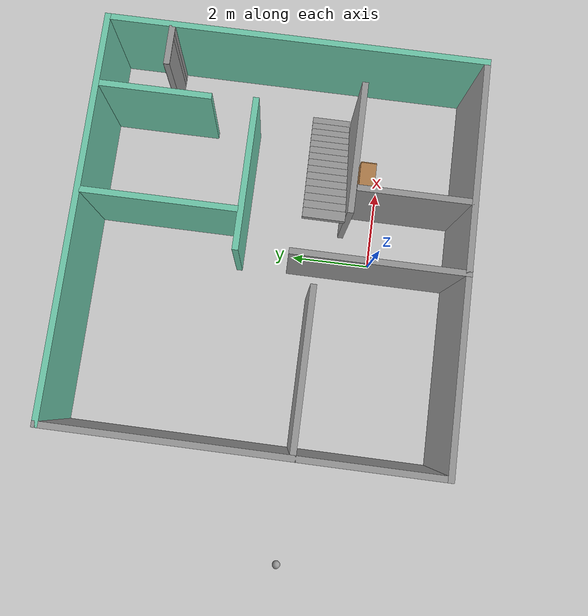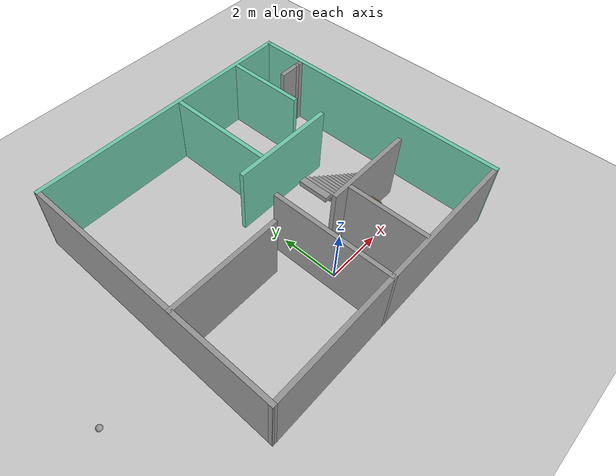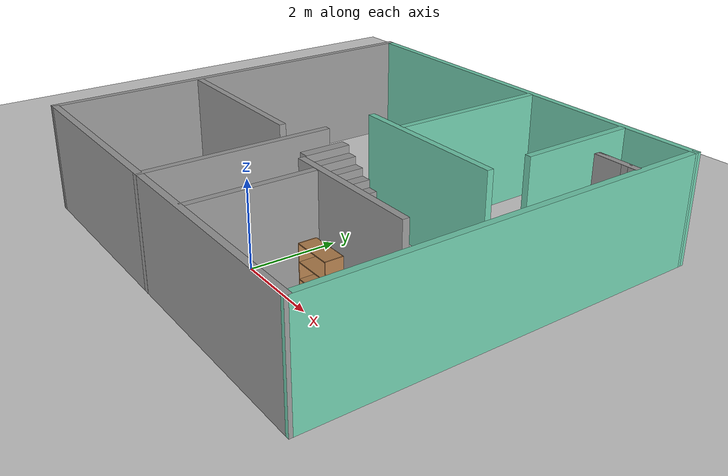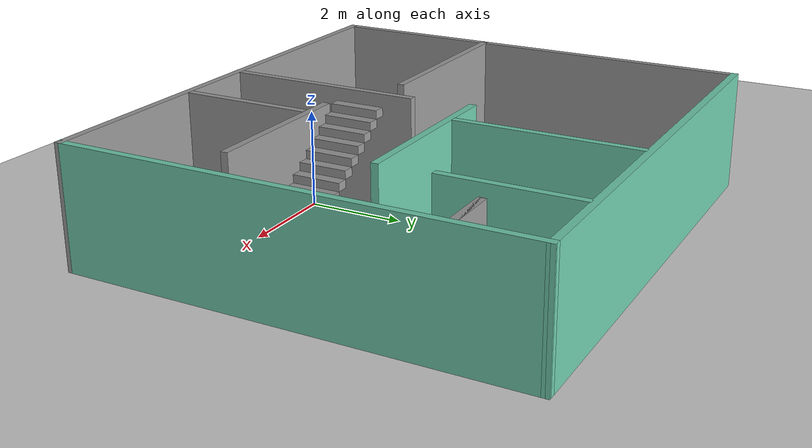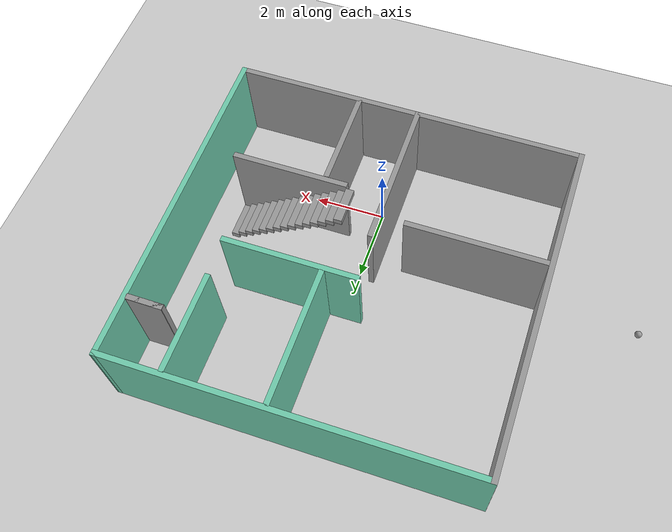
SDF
<sdf version="1.7">
 <world name="default">
  <light name="sun" type="directional">
   <pose>0 0 10 0 -0 0</pose>
   <diffuse>0.8 0.8 0.8 1</diffuse>
   <specular>0.2 0.2 0.2 1</specular>
   <attenuation>
    <range>1000</range>
    <constant>0.9</constant>
    <linear>0.01</linear>
    <quadratic>0.001</quadratic>
   </attenuation>
   <direction>-0.5 0.1 -0.9</direction>
   <spot><inner_angle>0</inner_angle><outer_angle>0</outer_angle><falloff>0</falloff></spot>
  </light>
  <model name="ground_plane">
   <static>1</static>
   <link name="link">
    <collision name="collision">
     <geometry><plane><normal>0 0 1</normal><size>100 100</size></plane></geometry>
     <surface>
      <contact><collide_bitmask>65535</collide_bitmask></contact>
      <friction><ode><mu>100</mu><mu2>50</mu2></ode></friction>
     </surface>
    </collision>
    <visual name="visual">
     <cast_shadows>0</cast_shadows>
     <geometry><plane><normal>0 0 1</normal><size>100 100</size></plane></geometry>
     <material>
      <script><uri>file://media/materials/scripts/gazebo.material</uri><name>Gazebo/Grey</name></script>
     </material>
    </visual>
   </link>
  </model>
  <gravity>0 0 -9.8</gravity>
  <magnetic_field>6e-06 2.3e-05 -4.2e-05</magnetic_field>
  <atmosphere type="adiabatic"/>
  <physics type="ode">
   <max_step_size>0.001</max_step_size>
   <real_time_factor>1</real_time_factor>
   <real_time_update_rate>1000</real_time_update_rate>
  </physics>
  <scene><ambient>0.4 0.4 0.4 1</ambient><background>0.7 0.7 0.7 1</background><shadows>1</shadows></scene>
  <spherical_coordinates>
   <surface_model>EARTH_WGS84</surface_model>
   <latitude_deg>0</latitude_deg>
   <longitude_deg>0</longitude_deg>
   <elevation>0</elevation>
   <heading_deg>0</heading_deg>
  </spherical_coordinates>
  <model name="my_house">
   <pose>-0.073859 2.59663 0 0 -0 0</pose>
   <link name="Stairs_0">
    <visual name="Stairs_0_Visual_0">
     <pose>3.89631 -1.16417 0.083333 0 -0 -1.5708</pose>
     <geometry><box><size>1 0.231 0.166667</size></box></geometry>
     <material>
      <script><uri>file://media/materials/scripts/gazebo.material</uri><name>Gazebo/Grey</name></script>
      <ambient>1 1 1 1</ambient>
     </material>
     <meta><layer>0</layer></meta>
    </visual>
    <collision name="Stairs_0_Collision_0">
     <geometry><box><size>1 0.231 0.166667</size></box></geometry>
     <pose>3.89631 -1.16417 0.083333 0 -0 -1.5708</pose>
    </collision>
    <visual name="Stairs_0_Visual_1">
     <pose>3.66531 -1.16417 0.25 0 -0 -1.5708</pose>
     <geometry><box><size>1 0.231 0.166667</size></box></geometry>
     <material>
      <script><uri>file://media/materials/scripts/gazebo.material</uri><name>Gazebo/Grey</name></script>
      <ambient>1 1 1 1</ambient>
     </material>
     <meta><layer>0</layer></meta>
    </visual>
    <collision name="Stairs_0_Collision_1">
     <geometry><box><size>1 0.231 0.166667</size></box></geometry>
     <pose>3.66531 -1.16417 0.25 0 -0 -1.5708</pose>
    </collision>
    <visual name="Stairs_0_Visual_2">
     <pose>3.43431 -1.16417 0.416667 0 -0 -1.5708</pose>
     <geometry><box><size>1 0.231 0.166667</size></box></geometry>
     <material>
      <script><uri>file://media/materials/scripts/gazebo.material</uri><name>Gazebo/Grey</name></script>
      <ambient>1 1 1 1</ambient>
     </material>
     <meta><layer>0</layer></meta>
    </visual>
    <collision name="Stairs_0_Collision_2">
     <geometry><box><size>1 0.231 0.166667</size></box></geometry>
     <pose>3.43431 -1.16417 0.416667 0 -0 -1.5708</pose>
    </collision>
    <visual name="Stairs_0_Visual_3">
     <pose>3.20331 -1.16417 0.583333 0 -0 -1.5708</pose>
     <geometry><box><size>1 0.231 0.166667</size></box></geometry>
     <material>
      <script><uri>file://media/materials/scripts/gazebo.material</uri><name>Gazebo/Grey</name></script>
      <ambient>1 1 1 1</ambient>
     </material>
     <meta><layer>0</layer></meta>
    </visual>
    <collision name="Stairs_0_Collision_3">
     <geometry><box><size>1 0.231 0.166667</size></box></geometry>
     <pose>3.20331 -1.16417 0.583333 0 -0 -1.5708</pose>
    </collision>
    <visual name="Stairs_0_Visual_4">
     <pose>2.97231 -1.16417 0.75 0 -0 -1.5708</pose>
     <geometry><box><size>1 0.231 0.166667</size></box></geometry>
     <material>
      <script><uri>file://media/materials/scripts/gazebo.material</uri><name>Gazebo/Grey</name></script>
      <ambient>1 1 1 1</ambient>
     </material>
     <meta><layer>0</layer></meta>
    </visual>
    <collision name="Stairs_0_Collision_4">
     <geometry><box><size>1 0.231 0.166667</size></box></geometry>
     <pose>2.97231 -1.16417 0.75 0 -0 -1.5708</pose>
    </collision>
    <visual name="Stairs_0_Visual_5">
     <pose>2.74131 -1.16417 0.916667 0 -0 -1.5708</pose>
     <geometry><box><size>1 0.231 0.166667</size></box></geometry>
     <material>
      <script><uri>file://media/materials/scripts/gazebo.material</uri><name>Gazebo/Grey</name></script>
      <ambient>1 1 1 1</ambient>
     </material>
     <meta><layer>0</layer></meta>
    </visual>
    <collision name="Stairs_0_Collision_5">
     <geometry><box><size>1 0.231 0.166667</size></box></geometry>
     <pose>2.74131 -1.16417 0.916667 0 -0 -1.5708</pose>
    </collision>
    <visual name="Stairs_0_Visual_6">
     <pose>2.51031 -1.16417 1.08333 0 -0 -1.5708</pose>
     <geometry><box><size>1 0.231 0.166667</size></box></geometry>
     <material>
      <script><uri>file://media/materials/scripts/gazebo.material</uri><name>Gazebo/Grey</name></script>
      <ambient>1 1 1 1</ambient>
     </material>
     <meta><layer>0</layer></meta>
    </visual>
    <collision name="Stairs_0_Collision_6">
     <geometry><box><size>1 0.231 0.166667</size></box></geometry>
     <pose>2.51031 -1.16417 1.08333 0 -0 -1.5708</pose>
    </collision>
    <visual name="Stairs_0_Visual_7">
     <pose>2.27931 -1.16417 1.25 0 -0 -1.5708</pose>
     <geometry><box><size>1 0.231 0.166667</size></box></geometry>
     <material>
      <script><uri>file://media/materials/scripts/gazebo.material</uri><name>Gazebo/Grey</name></script>
      <ambient>1 1 1 1</ambient>
     </material>
     <meta><layer>0</layer></meta>
    </visual>
    <collision name="Stairs_0_Collision_7">
     <geometry><box><size>1 0.231 0.166667</size></box></geometry>
     <pose>2.27931 -1.16417 1.25 0 -0 -1.5708</pose>
    </collision>
    <visual name="Stairs_0_Visual_8">
     <pose>2.04831 -1.16417 1.41667 0 -0 -1.5708</pose>
     <geometry><box><size>1 0.231 0.166667</size></box></geometry>
     <material>
      <script><uri>file://media/materials/scripts/gazebo.material</uri><name>Gazebo/Grey</name></script>
      <ambient>1 1 1 1</ambient>
     </material>
     <meta><layer>0</layer></meta>
    </visual>
    <collision name="Stairs_0_Collision_8">
     <geometry><box><size>1 0.231 0.166667</size></box></geometry>
     <pose>2.04831 -1.16417 1.41667 0 -0 -1.5708</pose>
    </collision>
    <visual name="Stairs_0_Visual_9">
     <pose>1.81731 -1.16417 1.58333 0 -0 -1.5708</pose>
     <geometry><box><size>1 0.231 0.166667</size></box></geometry>
     <material>
      <script><uri>file://media/materials/scripts/gazebo.material</uri><name>Gazebo/Grey</name></script>
      <ambient>1 1 1 1</ambient>
     </material>
     <meta><layer>0</layer></meta>
    </visual>
    <collision name="Stairs_0_Collision_9">
     <geometry><box><size>1 0.231 0.166667</size></box></geometry>
     <pose>1.81731 -1.16417 1.58333 0 -0 -1.5708</pose>
    </collision>
    <visual name="Stairs_0_Visual_10">
     <pose>1.58631 -1.16417 1.75 0 -0 -1.5708</pose>
     <geometry><box><size>1 0.231 0.166667</size></box></geometry>
     <material>
      <script><uri>file://media/materials/scripts/gazebo.material</uri><name>Gazebo/Grey</name></script>
      <ambient>1 1 1 1</ambient>
     </material>
     <meta><layer>0</layer></meta>
    </visual>
    <collision name="Stairs_0_Collision_10">
     <geometry><box><size>1 0.231 0.166667</size></box></geometry>
     <pose>1.58631 -1.16417 1.75 0 -0 -1.5708</pose>
    </collision>
    <visual name="Stairs_0_Visual_11">
     <pose>1.35531 -1.16417 1.91667 0 -0 -1.5708</pose>
     <geometry><box><size>1 0.231 0.166667</size></box></geometry>
     <material>
      <script><uri>file://media/materials/scripts/gazebo.material</uri><name>Gazebo/Grey</name></script>
      <ambient>1 1 1 1</ambient>
     </material>
     <meta><layer>0</layer></meta>
    </visual>
    <collision name="Stairs_0_Collision_11">
     <geometry><box><size>1 0.231 0.166667</size></box></geometry>
     <pose>1.35531 -1.16417 1.91667 0 -0 -1.5708</pose>
    </collision>
    <visual name="Stairs_0_Visual_12">
     <pose>1.12431 -1.16417 2.08333 0 -0 -1.5708</pose>
     <geometry><box><size>1 0.231 0.166667</size></box></geometry>
     <material>
      <script><uri>file://media/materials/scripts/gazebo.material</uri><name>Gazebo/Grey</name></script>
      <ambient>1 1 1 1</ambient>
     </material>
     <meta><layer>0</layer></meta>
    </visual>
    <collision name="Stairs_0_Collision_12">
     <geometry><box><size>1 0.231 0.166667</size></box></geometry>
     <pose>1.12431 -1.16417 2.08333 0 -0 -1.5708</pose>
    </collision>
    <visual name="Stairs_0_Visual_13">
     <pose>0.89331 -1.16417 2.25 0 -0 -1.5708</pose>
     <geometry><box><size>1 0.231 0.166667</size></box></geometry>
     <material>
      <script><uri>file://media/materials/scripts/gazebo.material</uri><name>Gazebo/Grey</name></script>
      <ambient>1 1 1 1</ambient>
     </material>
     <meta><layer>0</layer></meta>
    </visual>
    <collision name="Stairs_0_Collision_13">
     <geometry><box><size>1 0.231 0.166667</size></box></geometry>
     <pose>0.89331 -1.16417 2.25 0 -0 -1.5708</pose>
    </collision>
    <visual name="Stairs_0_Visual_14">
     <pose>0.66231 -1.16417 2.41667 0 -0 -1.5708</pose>
     <geometry><box><size>1 0.231 0.166667</size></box></geometry>
     <material>
      <script><uri>file://media/materials/scripts/gazebo.material</uri><name>Gazebo/Grey</name></script>
      <ambient>1 1 1 1</ambient>
     </material>
     <meta><layer>0</layer></meta>
    </visual>
    <collision name="Stairs_0_Collision_14">
     <geometry><box><size>1 0.231 0.166667</size></box></geometry>
     <pose>0.66231 -1.16417 2.41667 0 -0 -1.5708</pose>
    </collision>
   </link>
   <link name="Wall_0">
    <collision name="Wall_0_Collision">
     <geometry><box><size>10 0.15 2.5</size></box></geometry>
     <pose>0 0 1.25 0 -0 0</pose>
    </collision>
    <visual name="Wall_0_Visual">
     <pose>0 0 1.25 0 -0 0</pose>
     <geometry><box><size>10 0.15 2.5</size></box></geometry>
     <material>
      <script><uri>file://media/materials/scripts/gazebo.material</uri><name>Gazebo/Grey</name></script>
      <ambient>1 1 1 1</ambient>
     </material>
     <meta><layer>0</layer></meta>
    </visual>
    <pose>-0.001141 -4.63663 0 0 -0 0</pose>
   </link>
   <link name="Wall_1">
    <collision name="Wall_1_Collision">
     <geometry><box><size>9.42511 0.15 2.5</size></box></geometry>
     <pose>0 0 1.25 0 -0 0</pose>
    </collision>
    <visual name="Wall_1_Visual">
     <pose>0 0 1.25 0 -0 0</pose>
     <geometry><box><size>9.42511 0.15 2.5</size></box></geometry>
     <material>
      <script><uri>file://media/materials/scripts/gazebo.material</uri><name>Gazebo/Grey</name></script>
      <ambient>0.435294 0.796078 0.67451 1</ambient>
     </material>
     <meta><layer>0</layer></meta>
    </visual>
    <pose>4.925 0.000921 0 0 -0 1.57055</pose>
   </link>
   <link name="Wall_11">
    <collision name="Wall_11_Collision">
     <geometry><box><size>4.25 0.15 2.5</size></box></geometry>
     <pose>0 0 1.25 0 -0 0</pose>
    </collision>
    <visual name="Wall_11_Visual">
     <pose>0 0 1.25 0 -0 0</pose>
     <geometry><box><size>4.25 0.15 2.5</size></box></geometry>
     <material>
      <script><uri>file://media/materials/scripts/gazebo.material</uri><name>Gazebo/Grey</name></script>
      <ambient>1 1 1 1</ambient>
     </material>
     <meta><layer>0</layer></meta>
    </visual>
    <pose>-0.293634 -2.58849 0 0 -0 1.5708</pose>
   </link>
   <link name="Wall_13">
    <collision name="Wall_13_Collision">
     <geometry><box><size>3.75 0.15 2.5</size></box></geometry>
     <pose>0 0 1.25 0 -0 0</pose>
    </collision>
    <visual name="Wall_13_Visual">
     <pose>0 0 1.25 0 -0 0</pose>
     <geometry><box><size>3.75 0.15 2.5</size></box></geometry>
     <material>
      <script><uri>file://media/materials/scripts/gazebo.material</uri><name>Gazebo/Grey</name></script>
      <ambient>0.435294 0.796078 0.67451 1</ambient>
     </material>
     <meta><layer>0</layer></meta>
    </visual>
    <pose>1.43639 0.772014 0 0 -0 0</pose>
   </link>
   <link name="Wall_15">
    <collision name="Wall_15_Collision">
     <geometry><box><size>3.75 0.15 2.5</size></box></geometry>
     <pose>0 0 1.25 0 -0 0</pose>
    </collision>
    <visual name="Wall_15_Visual">
     <pose>0 0 1.25 0 -0 0</pose>
     <geometry><box><size>3.75 0.15 2.5</size></box></geometry>
     <material>
      <script><uri>file://media/materials/scripts/gazebo.material</uri><name>Gazebo/Grey</name></script>
      <ambient>0.435294 0.796078 0.67451 1</ambient>
     </material>
     <meta><layer>0</layer></meta>
    </visual>
    <pose>0.538267 2.71044 0 0 -0 1.5708</pose>
   </link>
   <link name="Wall_17">
    <collision name="Wall_17_Collision">
     <geometry><box><size>2.75 0.15 2.5</size></box></geometry>
     <pose>0 0 1.25 0 -0 0</pose>
    </collision>
    <visual name="Wall_17_Visual">
     <pose>0 0 1.25 0 -0 0</pose>
     <geometry><box><size>2.75 0.15 2.5</size></box></geometry>
     <material>
      <script><uri>file://media/materials/scripts/gazebo.material</uri><name>Gazebo/Grey</name></script>
      <ambient>0.435294 0.796078 0.67451 1</ambient>
     </material>
     <meta><layer>0</layer></meta>
    </visual>
    <pose>3.20438 3.20907 0 0 -0 -1.5708</pose>
   </link>
   <link name="Wall_2">
    <collision name="Wall_2_Collision">
     <geometry><box><size>10 0.15 2.5</size></box></geometry>
     <pose>0 0 1.25 0 -0 0</pose>
    </collision>
    <visual name="Wall_2_Visual">
     <pose>0 0 1.25 0 -0 0</pose>
     <geometry><box><size>10 0.15 2.5</size></box></geometry>
     <material>
      <script><uri>file://media/materials/scripts/gazebo.material</uri><name>Gazebo/Grey</name></script>
      <ambient>0.435294 0.796078 0.67451 1</ambient>
     </material>
     <meta><layer>0</layer></meta>
    </visual>
    <pose>0.001141 4.63848 0 0 -0 3.14159</pose>
   </link>
   <link name="Wall_20">
    <collision name="Wall_20_Collision">
     <geometry><box><size>0.15 0.15 2.5</size></box></geometry>
     <pose>0 0 1.25 0 -0 0</pose>
    </collision>
    <visual name="Wall_20_Visual">
     <pose>0 0 1.25 0 -0 0</pose>
     <geometry><box><size>0.15 0.15 2.5</size></box></geometry>
     <material>
      <script><uri>file://media/materials/scripts/gazebo.material</uri><name>Gazebo/Grey</name></script>
      <ambient>1 1 1 1</ambient>
     </material>
     <meta><layer>0</layer></meta>
    </visual>
    <pose>4.60646 3.02926 0 0 -0 0</pose>
   </link>
   <link name="Wall_21">
    <collision name="Wall_21_Collision">
     <geometry><box><size>0.15 0.15 2.5</size></box></geometry>
     <pose>0 0 1.25 0 -0 0</pose>
    </collision>
    <visual name="Wall_21_Visual">
     <pose>0 0 1.25 0 -0 0</pose>
     <geometry><box><size>0.15 0.15 2.5</size></box></geometry>
     <material>
      <script><uri>file://media/materials/scripts/gazebo.material</uri><name>Gazebo/Grey</name></script>
      <ambient>0.435294 0.796078 0.67451 1</ambient>
     </material>
     <meta><layer>0</layer></meta>
    </visual>
    <pose>4.60646 3.02926 0 0 -0 0</pose>
   </link>
   <link name="Wall_25">
    <collision name="Wall_25_Collision">
     <geometry><box><size>1 0.15 2.5</size></box></geometry>
     <pose>0 0 1.25 0 -0 0</pose>
    </collision>
    <visual name="Wall_25_Visual">
     <pose>0 0 1.25 0 -0 0</pose>
     <geometry><box><size>1 0.15 2.5</size></box></geometry>
     <material>
      <script><uri>file://media/materials/scripts/gazebo.material</uri><name>Gazebo/Grey</name></script>
      <ambient>1 1 1 1</ambient>
     </material>
     <meta><layer>0</layer></meta>
    </visual>
    <pose>4.37929 3.03721 0 0 -0 0</pose>
   </link>
   <link name="Wall_26">
    <collision name="Wall_26_Collision">
     <geometry><box><size>1 0.15 2.5</size></box></geometry>
     <pose>0 0 1.25 0 -0 0</pose>
    </collision>
    <visual name="Wall_26_Visual">
     <pose>0 0 1.25 0 -0 0</pose>
     <geometry><box><size>1 0.15 2.5</size></box></geometry>
     <material>
      <script><uri>file://media/materials/scripts/gazebo.material</uri><name>Gazebo/Grey</name></script>
      <ambient>1 1 1 1</ambient>
     </material>
     <meta><layer>0</layer></meta>
    </visual>
    <pose>4.37173 3.02965 0 0 -0 3.14159</pose>
   </link>
   <link name="Wall_3">
    <collision name="Wall_3_Collision">
     <geometry><box><size>9.42511 0.15 2.5</size></box></geometry>
     <pose>0 0 1.25 0 -0 0</pose>
    </collision>
    <visual name="Wall_3_Visual">
     <pose>0 0 1.25 0 -0 0</pose>
     <geometry><box><size>9.42511 0.15 2.5</size></box></geometry>
     <material>
      <script><uri>file://media/materials/scripts/gazebo.material</uri><name>Gazebo/Grey</name></script>
      <ambient>1 1 1 1</ambient>
     </material>
     <meta><layer>0</layer></meta>
    </visual>
    <pose>-4.925 0.000921 0 0 -0 -1.57104</pose>
   </link>
   <link name="Wall_5">
    <collision name="Wall_5_Collision">
     <geometry><box><size>2.75 0.15 2.5</size></box></geometry>
     <pose>0 0 1.25 0 -0 0</pose>
    </collision>
    <visual name="Wall_5_Visual">
     <pose>0 0 1.25 0 -0 0</pose>
     <geometry><box><size>2.75 0.15 2.5</size></box></geometry>
     <material>
      <script><uri>file://media/materials/scripts/gazebo.material</uri><name>Gazebo/Grey</name></script>
      <ambient>1 1 1 1</ambient>
     </material>
     <meta><layer>0</layer></meta>
    </visual>
    <pose>1.40888 -3.23341 0 0 -0 -1.5708</pose>
   </link>
   <link name="Wall_7">
    <collision name="Wall_7_Collision">
     <geometry><box><size>3.25 0.15 2.5</size></box></geometry>
     <pose>0 0 1.25 0 -0 0</pose>
    </collision>
    <visual name="Wall_7_Visual">
     <pose>0 0 1.25 0 -0 0</pose>
     <geometry><box><size>3.25 0.15 2.5</size></box></geometry>
     <material>
      <script><uri>file://media/materials/scripts/gazebo.material</uri><name>Gazebo/Grey</name></script>
      <ambient>1 1 1 1</ambient>
     </material>
     <meta><layer>0</layer></meta>
    </visual>
    <pose>2.40641 -1.776 0 0 -0 0</pose>
   </link>
   <link name="Wall_9">
    <collision name="Wall_9_Collision">
     <geometry><box><size>4 0.15 2.5</size></box></geometry>
     <pose>0 0 1.25 0 -0 0</pose>
    </collision>
    <visual name="Wall_9_Visual">
     <pose>0 0 1.25 0 -0 0</pose>
     <geometry><box><size>4 0.15 2.5</size></box></geometry>
     <material>
      <script><uri>file://media/materials/scripts/gazebo.material</uri><name>Gazebo/Grey</name></script>
      <ambient>1 1 1 1</ambient>
     </material>
     <meta><layer>0</layer></meta>
    </visual>
    <pose>-2.99752 -1.12887 0 0 -0 0</pose>
   </link>
   <static>1</static>
  </model>
  <model name="bookshelf">
   <static>1</static>
   <link name="link">
    <inertial><mass>1</mass></inertial>
    <collision name="back">
     <pose>0 0.005 0.6 0 -0 0</pose>
     <geometry><box><size>0.9 0.01 1.2</size></box></geometry>
    </collision>
    <visual name="visual1">
     <pose>0 0.005 0.6 0 -0 0</pose>
     <geometry><box><size>0.9 0.01 1.2</size></box></geometry>
     <material>
      <script><uri>file://media/materials/scripts/gazebo.material</uri><name>Gazebo/Wood</name></script>
     </material>
    </visual>
    <collision name="left_side">
     <pose>0.45 -0.195 0.6 0 -0 0</pose>
     <geometry><box><size>0.02 0.4 1.2</size></box></geometry>
    </collision>
    <visual name="visual2">
     <pose>0.45 -0.195 0.6 0 -0 0</pose>
     <geometry><box><size>0.02 0.4 1.2</size></box></geometry>
     <material>
      <script><uri>file://media/materials/scripts/gazebo.material</uri><name>Gazebo/Wood</name></script>
     </material>
    </visual>
    <collision name="right_side">
     <pose>-0.45 -0.195 0.6 0 -0 0</pose>
     <geometry><box><size>0.02 0.4 1.2</size></box></geometry>
    </collision>
    <visual name="visual3">
     <pose>-0.45 -0.195 0.6 0 -0 0</pose>
     <geometry><box><size>0.02 0.4 1.2</size></box></geometry>
     <material>
      <script><uri>file://media/materials/scripts/gazebo.material</uri><name>Gazebo/Wood</name></script>
     </material>
    </visual>
    <collision name="bottom">
     <pose>0 -0.195 0.03 0 -0 0</pose>
     <geometry><box><size>0.88 0.4 0.06</size></box></geometry>
    </collision>
    <visual name="visual4">
     <pose>0 -0.195 0.03 0 -0 0</pose>
     <geometry><box><size>0.88 0.4 0.06</size></box></geometry>
     <material>
      <script><uri>file://media/materials/scripts/gazebo.material</uri><name>Gazebo/Wood</name></script>
     </material>
    </visual>
    <collision name="top">
     <pose>0 -0.195 1.19 0 -0 0</pose>
     <geometry><box><size>0.88 0.4 0.02</size></box></geometry>
    </collision>
    <visual name="visual5">
     <pose>0 -0.195 1.19 0 -0 0</pose>
     <geometry><box><size>0.88 0.4 0.02</size></box></geometry>
     <material>
      <script><uri>file://media/materials/scripts/gazebo.material</uri><name>Gazebo/Wood</name></script>
     </material>
    </visual>
    <collision name="low_shelf">
     <pose>0 -0.195 0.43 0 -0 0</pose>
     <geometry><box><size>0.88 0.4 0.02</size></box></geometry>
    </collision>
    <visual name="visual6">
     <pose>0 -0.195 0.43 0 -0 0</pose>
     <geometry><box><size>0.88 0.4 0.02</size></box></geometry>
     <material>
      <script><uri>file://media/materials/scripts/gazebo.material</uri><name>Gazebo/Wood</name></script>
     </material>
    </visual>
    <collision name="high_shelf">
     <pose>0 -0.195 0.8 0 -0 0</pose>
     <geometry><box><size>0.88 0.4 0.02</size></box></geometry>
    </collision>
    <visual name="visual7">
     <pose>0 -0.195 0.8 0 -0 0</pose>
     <geometry><box><size>0.88 0.4 0.02</size></box></geometry>
     <material>
      <script><uri>file://media/materials/scripts/gazebo.material</uri><name>Gazebo/Wood</name></script>
     </material>
    </visual>
   </link>
   <pose>2 0.584426 0 0 -0 0</pose>
  </model>
  <model name="my_ball">
   <link name="link">
    <inertial>
     <mass>1</mass>
     <inertia><ixx>0.1</ixx><ixy>0</ixy><ixz>0</ixz><iyy>0.1</iyy><iyz>0</iyz><izz>0.1</izz></inertia>
    </inertial>
    <visual name="visual">
     <geometry><sphere><radius>0.1</radius></sphere></geometry>
     <material>
      <script><name>Gazebo/Grey</name><uri>file://media/materials/scripts/gazebo.material</uri></script>
      <shader type="pixel"><normal_map>__default__</normal_map></shader>
      <ambient>1 1 1 1</ambient>
      <diffuse>1 1 1 1</diffuse>
      <specular>1 1 1 1</specular>
      <emissive>1 1 1 1</emissive>
     </material>
    </visual>
    <collision name="collision">
     <geometry><sphere><radius>0.1</radius></sphere></geometry>
     <surface>
      <friction>
       <ode><mu>1</mu><mu2>1</mu2><fdir1>0 0 0</fdir1><slip1>0</slip1><slip2>0</slip2></ode>
       <torsional>
        <coefficient>1</coefficient>
        <patch_radius>0</patch_radius>
        <surface_radius>0</surface_radius>
        <use_patch_radius>1</use_patch_radius>
        <ode><slip>0</slip></ode>
       </torsional>
      </friction>
      <bounce><restitution_coefficient>0</restitution_coefficient><threshold>1e+06</threshold></bounce>
      <contact>
       <collide_without_contact>0</collide_without_contact>
       <collide_without_contact_bitmask>1</collide_without_contact_bitmask>
       <collide_bitmask>1</collide_bitmask>
       <ode>
        <soft_cfm>0</soft_cfm>
        <soft_erp>0.2</soft_erp>
        <kp>1e+13</kp>
        <kd>1</kd>
        <max_vel>0.01</max_vel>
        <min_depth>0</min_depth>
       </ode>
       <bullet>
        <split_impulse>1</split_impulse>
        <split_impulse_penetration_threshold>-0.01</split_impulse_penetration_threshold>
        <soft_cfm>0</soft_cfm>
        <soft_erp>0.2</soft_erp>
        <kp>1e+13</kp>
        <kd>1</kd>
       </bullet>
      </contact>
     </surface>
    </collision>
   </link>
   <static>0</static>
   <pose>-7.78909 1.45275 0.1 0 -0 0</pose>
  </model>
  <plugin filename="libcollision_map_creator.so" name="collision_map_creator"/>
 </world>
</sdf>
